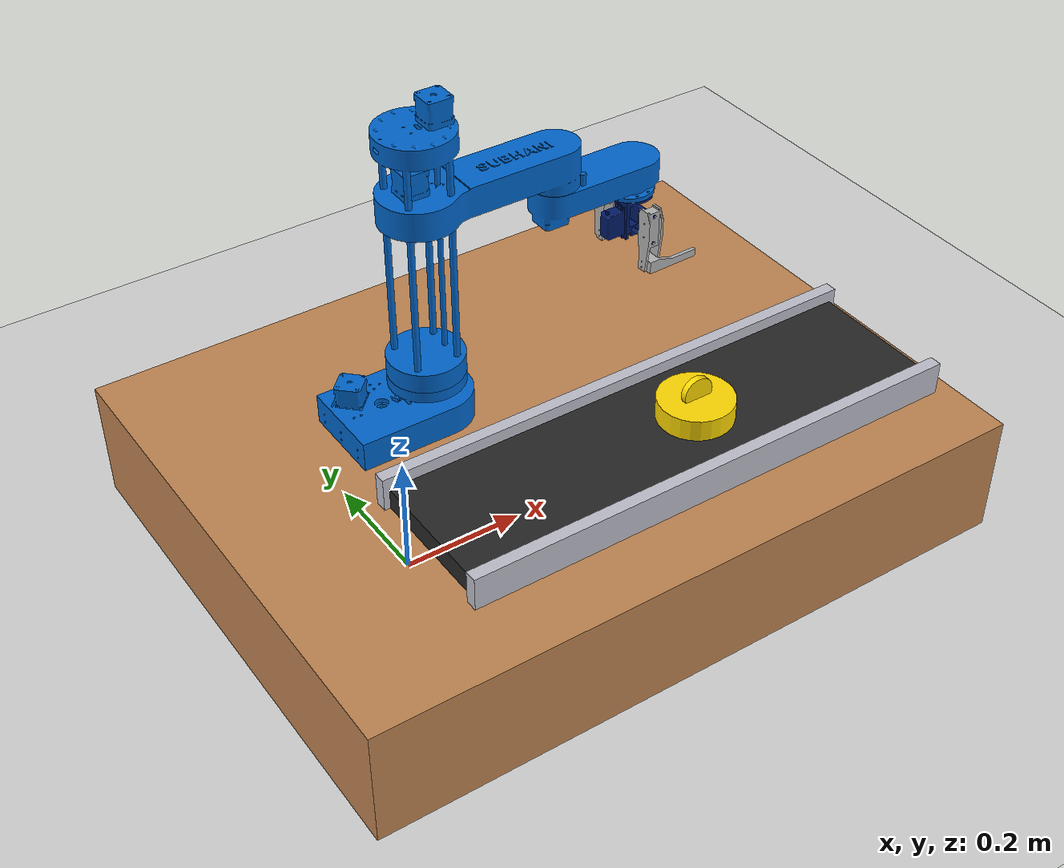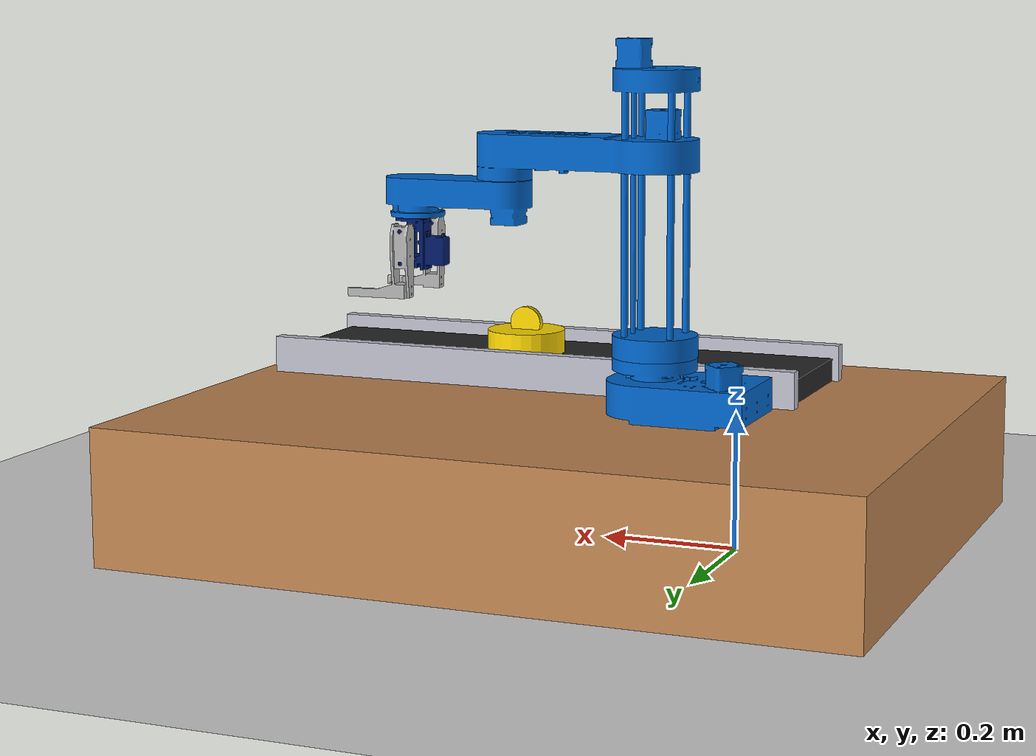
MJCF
<mujoco model="scara_pick_and_place">
  <compiler angle="radian" meshdir="../meshes" assetdir="../meshes"/>
  <option timestep="0.002" gravity="0 0 -9.81"/>

  <visual>
    <headlight ambient="0.4 0.4 0.4" diffuse="0.8 0.8 0.8"/>
  </visual>

  <asset>
    <!-- Textures & Materials -->
    <texture type="2d" name="groundplane" builtin="checker" rgb1="0.9 0.9 0.9" rgb2="0.75 0.75 0.75" width="512" height="512"/>
    <material name="groundplane" texture="groundplane" texrepeat="5 5" reflectance="0.2"/>
    <material name="wood_mat" rgba="0.75 0.52 0.32 1"/>
    <material name="scara_blue" rgba="0.0 0.4 0.8 1"/>
    <material name="scara_dark_blue" rgba="0.0 0.1 0.4 1"/>
    <material name="scara_grey" rgba="0.7 0.7 0.7 1"/>
    <material name="conveyor_belt_mat" rgba="0.15 0.15 0.15 1"/>
    <material name="conveyor_rail_mat" rgba="0.75 0.75 0.8 1"/>
    <material name="yellow_puck_mat" rgba="1.0 0.85 0.0 1"/>

    <!-- SCARA Meshes -->
    <mesh name="base_link" file="base_link.stl" scale="0.001 0.001 0.001"/>
    <mesh name="column_link" file="column_link.stl" scale="0.001 0.001 0.001"/>
    <mesh name="shoulder_link" file="shoulder_link.stl" scale="0.001 0.001 0.001"/>
    <mesh name="forearm_link" file="forearm_link.stl" scale="0.001 0.001 0.001"/>
    <mesh name="wrist_link" file="wrist_link.stl" scale="0.001 0.001 0.001"/>
    <mesh name="left_finger_link" file="left_finger_link.stl" scale="0.001 0.001 0.001"/>
    <mesh name="right_finger_link" file="right_finger_link.stl" scale="0.001 0.001 0.001"/>
  </asset>

  <worldbody>
    <!-- Ground Plane -->
    <geom name="floor" size="3 3 0.1" type="plane" material="groundplane"/>
    <light pos="0 0 3" dir="0 0 -1" directional="true"/>

    <!-- Wooden Table Platform -->
    <body name="table" pos="0 0 0">
      <geom name="table_top" pos="0.25 0 0.10" size="0.55 0.425 0.10" type="box" material="wood_mat"/>
    </body>

    <!-- SCARA Robot Mounted Flat on Table Surface -->
    <body name="base_link" pos="0.05 0.08 0.20">
      <geom type="mesh" mesh="base_link" material="scara_blue" contype="1" conaffinity="1"/>

      <body name="column_link" pos="0.045 0 0.089">
        <joint name="column_joint" pos="0 0 0" axis="0 0 1" range="-2.0 2.0" damping="10" armature="0.05"/>
        <geom type="mesh" mesh="column_link" pos="-0.045 0 -0.089" material="scara_blue" contype="2" conaffinity="2"/>

        <body name="shoulder_link" pos="0 0 0.28">
          <joint name="shoulder_joint" type="slide" pos="0 0 0" axis="0 0 1" range="-0.15 0.02" damping="50" armature="0.1"/>
          <geom type="mesh" mesh="shoulder_link" pos="-0.059954333 -0.059974857 -0.390000" material="scara_blue"/>

          <body name="forearm_link" pos="0.228 0 -0.04">
            <joint name="forearm_joint" pos="0 0 0" axis="0 0 1" range="-2.0 2.0" damping="10" armature="0.05"/>
            <geom type="mesh" mesh="forearm_link" pos="-0.273 0 -0.351" material="scara_blue"/>

            <body name="wrist_link" pos="0.1365 0 -0.06">
              <joint name="wrist_joint" pos="0 0 0" axis="0 0 1" range="-4.712 4.712" damping="5" armature="0.02"/>
              <geom type="mesh" mesh="wrist_link" pos="-0.4095 0 -0.291" material="scara_dark_blue"/>

              <body name="left_finger_link" pos="0 0.064 -0.0135">
                <joint name="left_finger_joint" type="slide" pos="0 0 0" axis="0 1 0" range="-0.06 0.0" damping="10" armature="0.02"/>
                <geom type="mesh" mesh="left_finger_link" pos="-0.409 -0.0626 -0.2775" material="scara_grey"/>
              </body>

              <body name="right_finger_link" pos="0 -0.064 -0.0135">
                <joint name="right_finger_joint" type="slide" pos="0 0 0" axis="0 -1 0" range="-0.06 0.0" damping="10" armature="0.02"/>
                <geom type="mesh" mesh="right_finger_link" pos="-0.409 0.0626 -0.2775" material="scara_grey"/>
              </body>
            </body>
          </body>
        </body>
      </body>
    </body>

    <!-- Conveyor Belt Track -->
    <body name="conveyor" pos="0.35 -0.18 0.20">
      <geom name="conveyor_bed" pos="0 0 0.0175" size="0.41 0.11 0.0175" type="box" material="conveyor_belt_mat"/>
      <geom name="left_rail" pos="0 0.12 0.0275" size="0.42 0.01 0.0275" type="box" material="conveyor_rail_mat"/>
      <geom name="right_rail" pos="0 -0.12 0.0275" size="0.42 0.01 0.0275" type="box" material="conveyor_rail_mat"/>
    </body>

    <!-- Yellow Puck Payload -->
    <body name="yellow_puck" pos="0.40 -0.18 0.235">
      <freejoint/>
      <geom name="puck_body" pos="0 0 0.0175" size="0.06 0.0175" type="cylinder" material="yellow_puck_mat" mass="0.1"/>
      <geom name="puck_handle" pos="0 0 0.045" size="0.025 0.005" type="cylinder" material="yellow_puck_mat" quat="0.7071 0.7071 0 0"/>
    </body>
  </worldbody>

  <actuator>
    <position name="act_column"
          joint="column_joint"
          kp="500"
          kv="50"
          ctrlrange="-2.0 2.0"
          forcerange="-100 100"/>
    <position name="act_shoulder" joint="shoulder_joint" kp="1000" kv="100"/>
    <position name="act_forearm" joint="forearm_joint" kp="500" kv="50"/>
    <position name="act_wrist" joint="wrist_joint" kp="200" kv="20"/>
    <position name="act_left_finger" joint="left_finger_joint" kp="300" kv="30"/>
    <position name="act_right_finger" joint="right_finger_joint" kp="300" kv="30"/>
  </actuator>
</mujoco>
